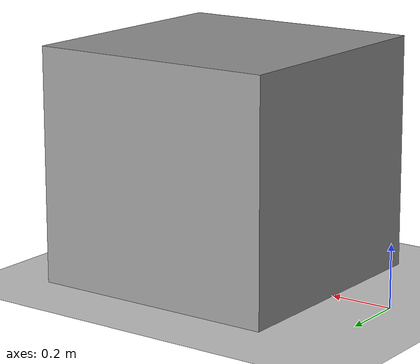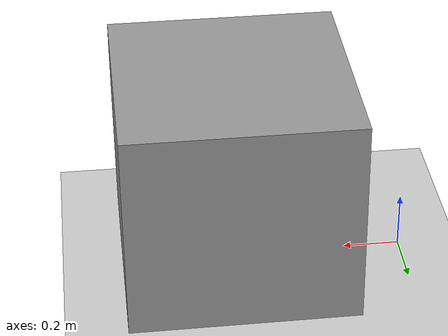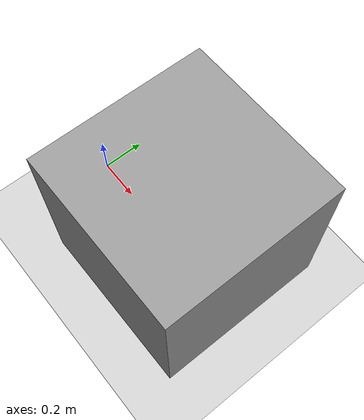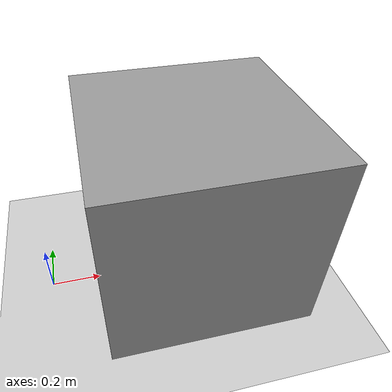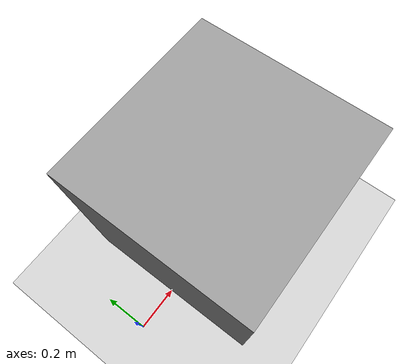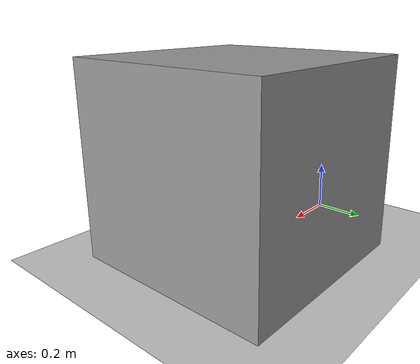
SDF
<?xml version="1.0" ?>
<sdf version="1.6">
  <world name="training_world">
    <include>
      <uri>model://ground_plane</uri>
    </include>
    <include>
      <uri>model://sun</uri>
    </include>

    <!-- Physics engine settings for better collision detection -->
    <physics name="default_physics" default="0" type="ode">
      <gravity>0 0 -9.8066</gravity>
      <ode>
        <solver>
          <type>quick</type>
          <iters>150</iters>
          <sor>1.4</sor>
          <use_dynamic_moi_rescaling>1</use_dynamic_moi_rescaling>
        </solver>
        <constraints>
          <cfm>0.00001</cfm>
          <erp>0.2</erp>
          <contact_max_correcting_vel>100.0</contact_max_correcting_vel>
          <contact_surface_layer>0.001</contact_surface_layer>
        </constraints>
      </ode>
      <real_time_update_rate>1000.0</real_time_update_rate>
      <max_step_size>0.001</max_step_size>
      <real_time_factor>1.0</real_time_factor>
    </physics>

    <!-- Simple table as a static box - positioned for reachability -->
    <model name="table">
      <static>true</static>
      <pose>0.6 0.0 0.375 0 0 0</pose>
      <link name="link">
        <inertial>
          <mass>1.0</mass>
          <inertia>
            <ixx>1</ixx><iyy>1</iyy><izz>1</izz>
            <ixy>0</ixy><ixz>0</ixz><iyz>0</iyz>
          </inertia>
        </inertial>
        <collision name="collision">
          <geometry>
            <box>
              <size>0.8 0.8 0.75</size>
            </box>
          </geometry>
          <surface>
            <contact>
              <ode>
                <kp>10000000.0</kp>
                <kd>1000.0</kd>
                <mu>1.0</mu>
                <mu2>1.0</mu2>
                <fdir1>0 0 1</fdir1>
                <slip1>0.0</slip1>
                <slip2>0.0</slip2>
                <max_vel>0.01</max_vel>
                <min_depth>0.001</min_depth>
              </ode>
            </contact>
            <friction>
              <ode>
                <mu>1.0</mu>
                <mu2>1.0</mu2>
                <fdir1>0 0 1</fdir1>
                <slip1>0.0</slip1>
                <slip2>0.0</slip2>
              </ode>
            </friction>
            <bounce>
              <restitution_coefficient>0.0</restitution_coefficient>
              <threshold>0.001</threshold>
            </bounce>
          </surface>
        </collision>
        <visual name="visual">
          <geometry>
            <box>
              <size>0.8 0.8 0.75</size>
            </box>
          </geometry>
          <material>
            <ambient>0.6 0.6 0.6 1</ambient>
            <diffuse>0.6 0.6 0.6 1</diffuse>
          </material>
        </visual>
      </link>
    </model>
  </world>
</sdf>
